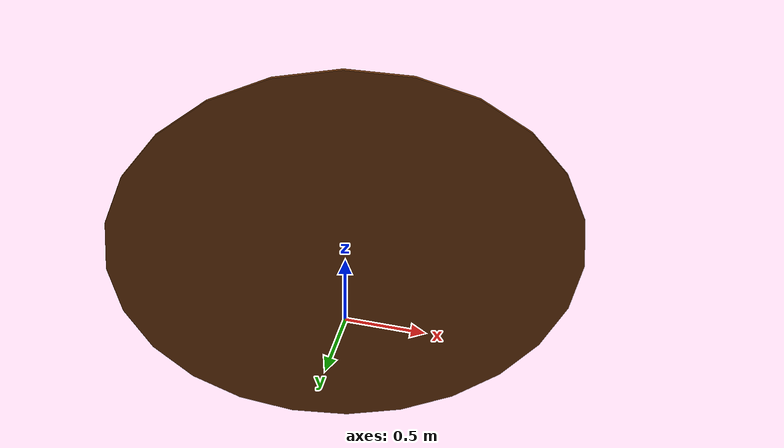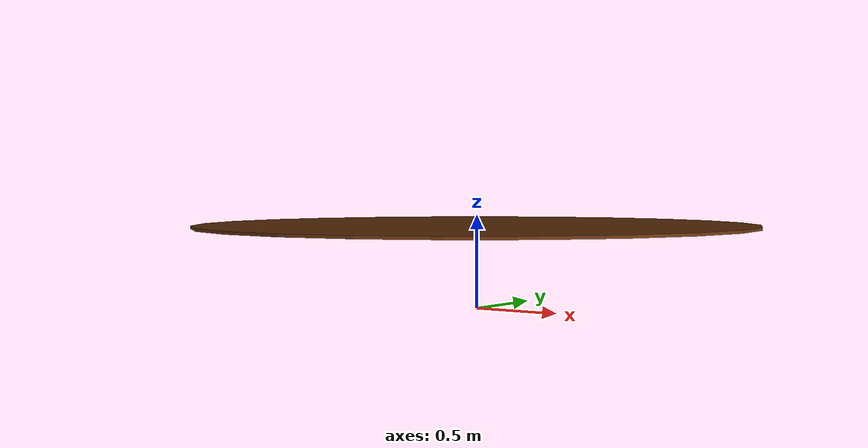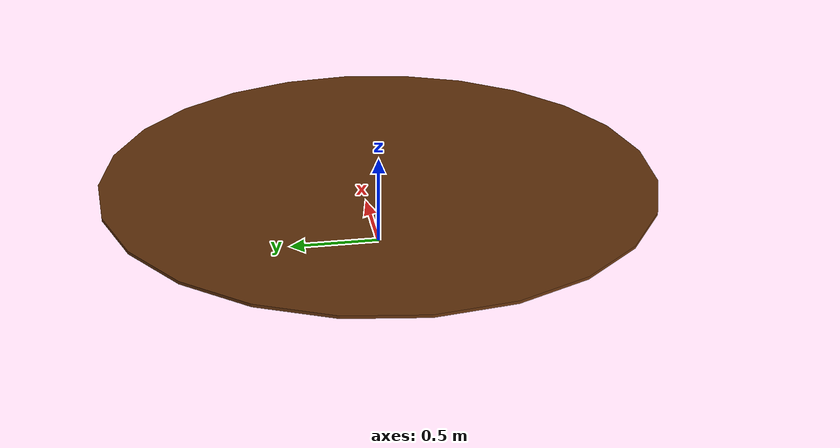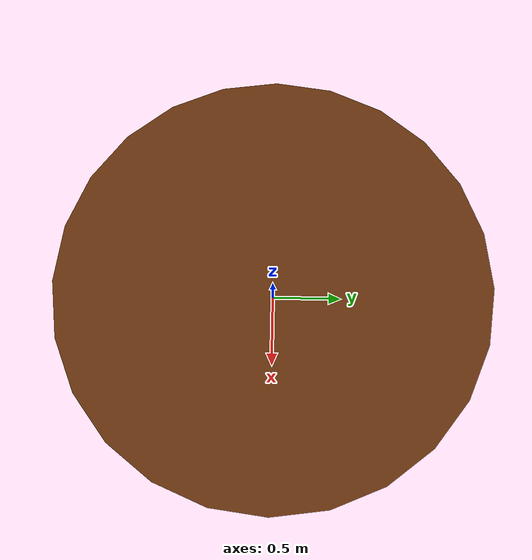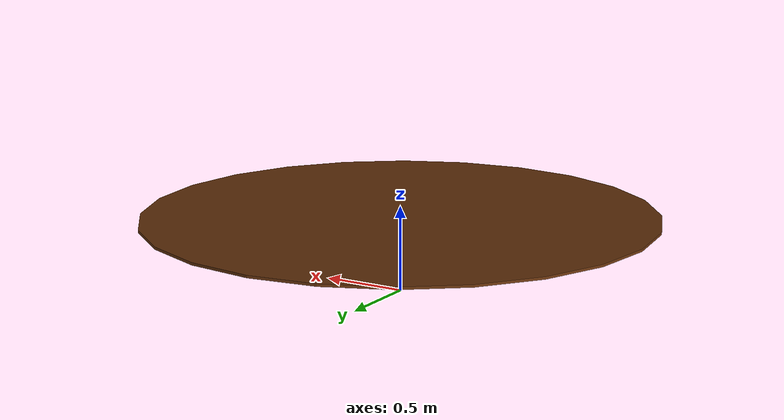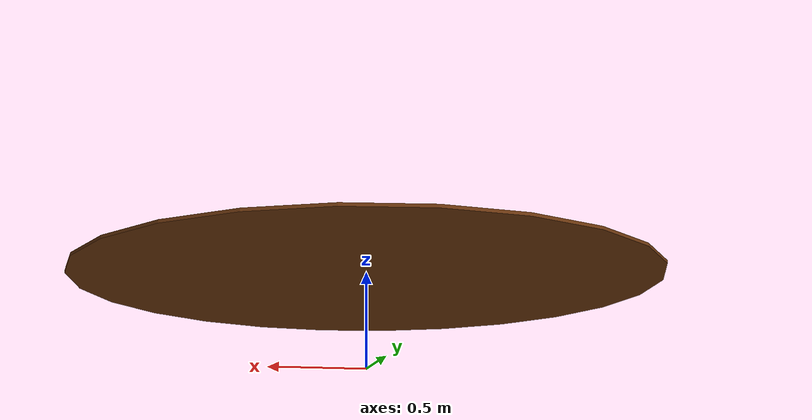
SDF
<?xml version="1.0"?>
<sdf version="1.7">

  <model name="table_top">
  <link name="table_top_link">
    <inertial>
      <mass>18.70</mass>
      <pose>0.0 0.0 0.445 0 0 0</pose>
      <inertia>
          <ixx>0.619</ixx>
          <ixy>0</ixy>
          <ixz>0</ixz>
          <iyy>0.374</iyy>
          <iyz>0</iyz>
          <izz>0.99</izz>
      </inertia>
    </inertial>
    <visual name="bottom">
      <pose>0.0 0.0 0.445 0 0 0</pose>
      <geometry>
        <cylinder>
          <radius>1.5</radius> <!-- Set the radius of the table -->
          <length>0.015</length> <!-- Set the thickness of the table -->
        </cylinder>
      </geometry>
      <material>
        <ambient>0.4 0.2 0.05 1.0</ambient>
        <diffuse>0.4 0.2 0.05 1.0</diffuse>
        <specular>0.2 0.2 0.2 1.0</specular>
        <emissive>0.1 0.1 0.1 1.0</emissive>
      </material>
    </visual>
    <collision name="bottom">
      <pose>0.0 0.0 0.445 0 0 0</pose>
      <geometry>
        <cylinder>
          <radius>1.5</radius> <!-- Match the radius of the table -->
          <length>0.015</length> <!-- Match the thickness of the table -->
        </cylinder>
      </geometry>
      <drake:proximity_properties>
        <drake:compliant_hydroelastic/>
        <drake:mesh_resolution_hint>0.01</drake:mesh_resolution_hint>
        <drake:hydroelastic_modulus>1.0e8</drake:hydroelastic_modulus>
      </drake:proximity_properties>
    </collision>
  </link>
  <frame name="table_top_center">
    <pose relative_to="table_top_link">0 0 0.47 0 0 0</pose>
  </frame>
</model>

</sdf>
